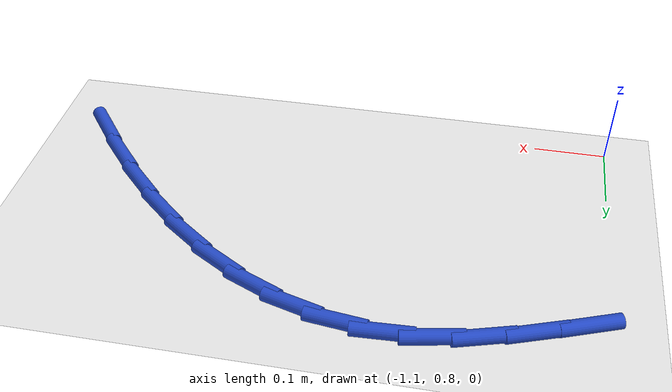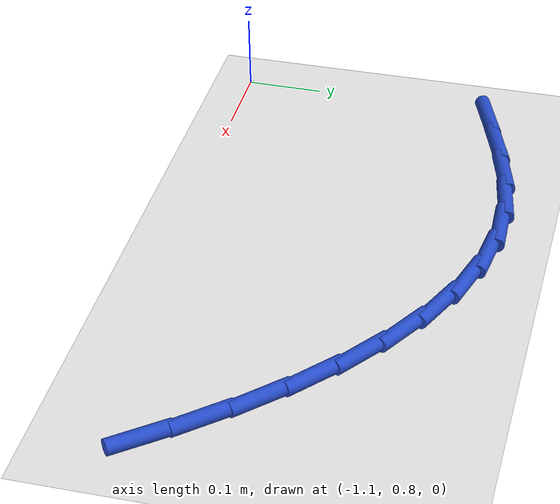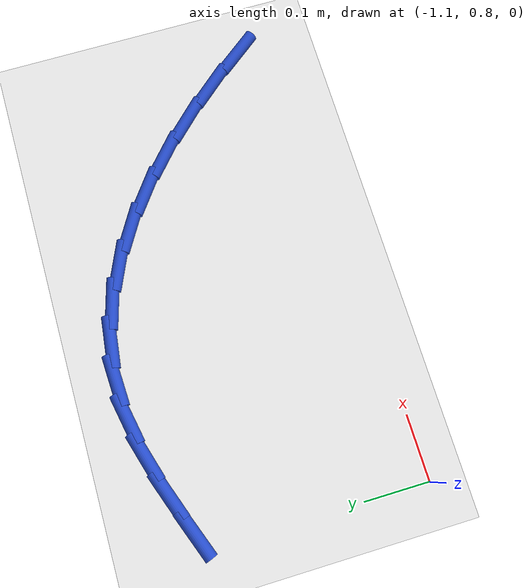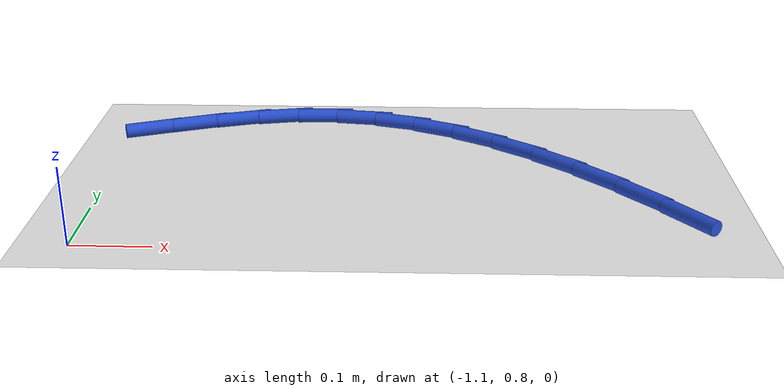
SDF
<sdf version="1.6">
 <world name="default">
  <model name="ground_plane">
   <static>1</static>
   <link name="link">
    <collision name="collision">
     <geometry><plane><normal>0 0 1</normal><size>100 100</size></plane></geometry>
     <surface><friction><ode><mu>100</mu><mu2>50</mu2></ode></friction></surface>
    </collision>
    <visual name="visual">
     <cast_shadows>0</cast_shadows>
     <geometry><plane><normal>0 0 1</normal><size>100 100</size></plane></geometry>
     <material>
      <script><uri>file://media/materials/scripts/gazebo.material</uri><name>Gazebo/WhiteGlow</name></script>
     </material>
    </visual>
   </link>
  </model>
  <model name="line">
   <link name="link_14">
    <pose>-0.3632171055701938 0.8762652005288362 0.01 0 1.57 -0.9041017455451</pose>
    <collision name="collision">
     <geometry><cylinder><radius>0.01</radius><length>0.08</length></cylinder></geometry>
    </collision>
    <visual name="visual">
     <material>
      <script><name>Gazebo/Blue</name><uri>file://media/materials/scripts/gazebo.material</uri></script>
     </material>
     <geometry><cylinder><radius>0.01</radius><length>0.08</length></cylinder></geometry>
    </visual>
   </link>
   <link name="link_15">
    <pose>-0.40849414465654765 0.9338045632429771 0.01 0 1.57 -0.8515741164169124</pose>
    <collision name="collision">
     <geometry><cylinder><radius>0.01</radius><length>0.08</length></cylinder></geometry>
    </collision>
    <visual name="visual">
     <material>
      <script><name>Gazebo/Blue</name><uri>file://media/materials/scripts/gazebo.material</uri></script>
     </material>
     <geometry><cylinder><radius>0.01</radius><length>0.08</length></cylinder></geometry>
    </visual>
   </link>
   <link name="link_16">
    <pose>-0.4556781725738821 0.9876865084019345 0.01 0 1.57 -0.7901668239524895</pose>
    <collision name="collision">
     <geometry><cylinder><radius>0.01</radius><length>0.08</length></cylinder></geometry>
    </collision>
    <visual name="visual">
     <material>
      <script><name>Gazebo/Blue</name><uri>file://media/materials/scripts/gazebo.material</uri></script>
     </material>
     <geometry><cylinder><radius>0.01</radius><length>0.08</length></cylinder></geometry>
    </visual>
   </link>
   <link name="link_17">
    <pose>-0.504673021684139 1.0371508796717004 0.01 0 1.57 -0.7178890934565795</pose>
    <collision name="collision">
     <geometry><cylinder><radius>0.01</radius><length>0.08</length></cylinder></geometry>
    </collision>
    <visual name="visual">
     <material>
      <script><name>Gazebo/Blue</name><uri>file://media/materials/scripts/gazebo.material</uri></script>
     </material>
     <geometry><cylinder><radius>0.01</radius><length>0.08</length></cylinder></geometry>
    </visual>
   </link>
   <link name="link_18">
    <pose>-0.5553825243492596 1.081437520718266 0.01 0 1.57 -0.6324367942842449</pose>
    <collision name="collision">
     <geometry><cylinder><radius>0.01</radius><length>0.08</length></cylinder></geometry>
    </collision>
    <visual name="visual">
     <material>
      <script><name>Gazebo/Blue</name><uri>file://media/materials/scripts/gazebo.material</uri></script>
     </material>
     <geometry><cylinder><radius>0.01</radius><length>0.08</length></cylinder></geometry>
    </visual>
   </link>
   <link name="link_19">
    <pose>-0.6077105129311859 1.1197862752076244 0.01 0 1.57 -0.5313661249680354</pose>
    <collision name="collision">
     <geometry><cylinder><radius>0.01</radius><length>0.08</length></cylinder></geometry>
    </collision>
    <visual name="visual">
     <material>
      <script><name>Gazebo/Blue</name><uri>file://media/materials/scripts/gazebo.material</uri></script>
     </material>
     <geometry><cylinder><radius>0.01</radius><length>0.08</length></cylinder></geometry>
    </visual>
   </link>
   <link name="link_20">
    <pose>-0.6615608197918594 1.151436986805767 0.01 0 1.57 -0.4125480383514259</pose>
    <collision name="collision">
     <geometry><cylinder><radius>0.01</radius><length>0.08</length></cylinder></geometry>
    </collision>
    <visual name="visual">
     <material>
      <script><name>Gazebo/Blue</name><uri>file://media/materials/scripts/gazebo.material</uri></script>
     </material>
     <geometry><cylinder><radius>0.01</radius><length>0.08</length></cylinder></geometry>
    </visual>
   </link>
   <link name="link_21">
    <pose>-0.7168372772932217 1.175629499178686 0.01 0 1.57 -0.2750446382621905</pose>
    <collision name="collision">
     <geometry><cylinder><radius>0.01</radius><length>0.08</length></cylinder></geometry>
    </collision>
    <visual name="visual">
     <material>
      <script><name>Gazebo/Blue</name><uri>file://media/materials/scripts/gazebo.material</uri></script>
     </material>
     <geometry><cylinder><radius>0.01</radius><length>0.08</length></cylinder></geometry>
    </visual>
   </link>
   <link name="link_22">
    <pose>-0.773443717797214 1.1916036559923726 0.01 0 1.57 -0.12036305092368496</pose>
    <collision name="collision">
     <geometry><cylinder><radius>0.01</radius><length>0.08</length></cylinder></geometry>
    </collision>
    <visual name="visual">
     <material>
      <script><name>Gazebo/Blue</name><uri>file://media/materials/scripts/gazebo.material</uri></script>
     </material>
     <geometry><cylinder><radius>0.01</radius><length>0.08</length></cylinder></geometry>
    </visual>
   </link>
   <link name="link_23">
    <pose>-0.831283973665779 1.1985993009128202 0.01 0 1.57 0.045826970238572344</pose>
    <collision name="collision">
     <geometry><cylinder><radius>0.01</radius><length>0.08</length></cylinder></geometry>
    </collision>
    <visual name="visual">
     <material>
      <script><name>Gazebo/Blue</name><uri>file://media/materials/scripts/gazebo.material</uri></script>
     </material>
     <geometry><cylinder><radius>0.01</radius><length>0.08</length></cylinder></geometry>
    </visual>
   </link>
   <link name="link_24">
    <pose>-0.8902624654987235 1.1958946016680077 0.01 0 1.57 0.19295951124817887</pose>
    <collision name="collision">
     <geometry><cylinder><radius>0.01</radius><length>0.08</length></cylinder></geometry>
    </collision>
    <visual name="visual">
     <material>
      <script><name>Gazebo/Blue</name><uri>file://media/materials/scripts/gazebo.material</uri></script>
     </material>
     <geometry><cylinder><radius>0.01</radius><length>0.08</length></cylinder></geometry>
    </visual>
   </link>
   <link name="link_25">
    <pose>-0.9503050277409641 1.1841628512822413 0.01 0 1.57 0.2915818027267111</pose>
    <collision name="collision">
     <geometry><cylinder><radius>0.01</radius><length>0.08</length></cylinder></geometry>
    </collision>
    <visual name="visual">
     <material>
      <script><name>Gazebo/Blue</name><uri>file://media/materials/scripts/gazebo.material</uri></script>
     </material>
     <geometry><cylinder><radius>0.01</radius><length>0.08</length></cylinder></geometry>
    </visual>
   </link>
   <link name="link_26">
    <pose>-1.0113644991369295 1.1658366896494017 0.01 0 1.57 0.34618899743628295</pose>
    <collision name="collision">
     <geometry><cylinder><radius>0.01</radius><length>0.08</length></cylinder></geometry>
    </collision>
    <visual name="visual">
     <material>
      <script><name>Gazebo/Blue</name><uri>file://media/materials/scripts/gazebo.material</uri></script>
     </material>
     <geometry><cylinder><radius>0.01</radius><length>0.08</length></cylinder></geometry>
    </visual>
   </link>
   <link name="link_27">
    <pose>-1.0733954436519817 1.1434611558778054 0.01 0 1.57 0.3625391327934963</pose>
    <collision name="collision">
     <geometry><cylinder><radius>0.01</radius><length>0.08</length></cylinder></geometry>
    </collision>
    <visual name="visual">
     <material>
      <script><name>Gazebo/Blue</name><uri>file://media/materials/scripts/gazebo.material</uri></script>
     </material>
     <geometry><cylinder><radius>0.01</radius><length>0.08</length></cylinder></geometry>
    </visual>
   </link>
  </model>
 </world>
</sdf>
